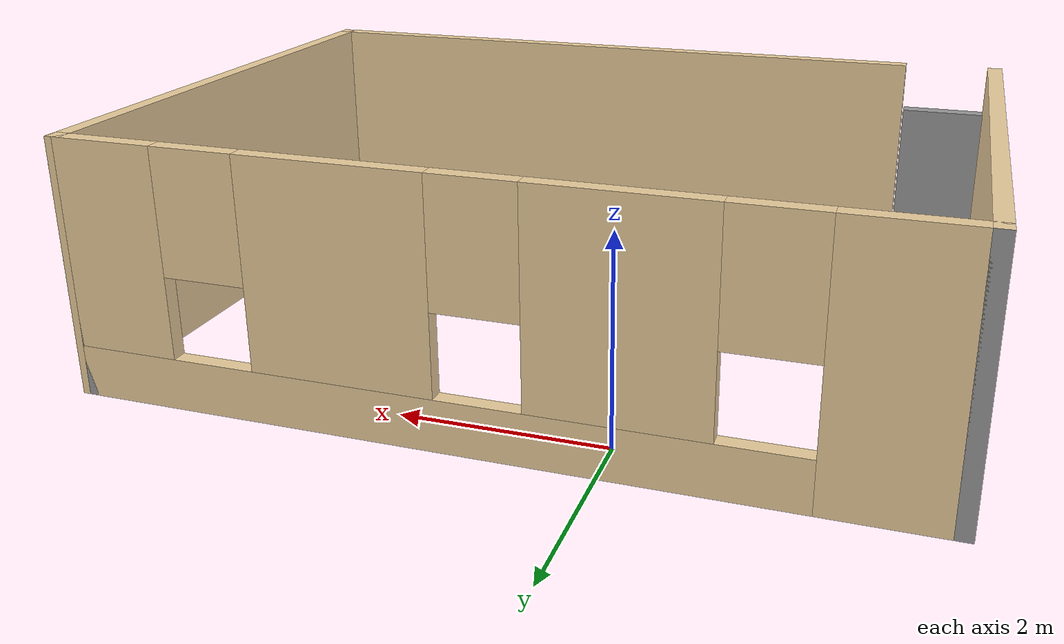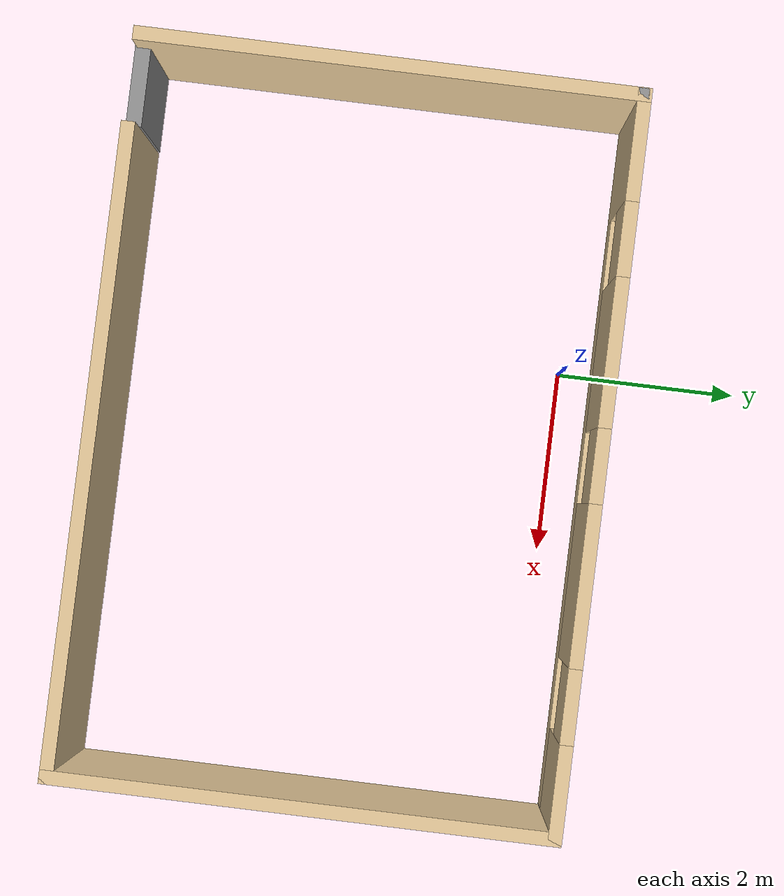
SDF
<?xml version='1.0'?>
<sdf version='1.7'>
  <model name='celec'>
    <pose>1.02952 -2.2413 0 0 -0 0</pose>
    <link name='Door_1'>
      <collision name='Door_1_Collision'>
        <geometry>
          <box>
            <size>0.9 0.17 2</size>
          </box>
        </geometry>
        <pose>0 0 1 0 -0 0</pose>
      </collision>
      <visual name='Door_1_Visual'>
        <pose>0 0 1 0 -0 0</pose>
        <geometry>
          <box>
            <size>0.9 0.17 2</size>
          </box>
        </geometry>
        <material>
          <script>
            <uri>file://media/materials/scripts/gazebo.material</uri>
            <name>Gazebo/Grey</name>
          </script>
        </material>
      </visual>
      <pose>-3.46102 -2.68076 0 0 -0 0</pose>
    </link>
    <link name='Wall_0'>
      <collision name='Wall_0_Collision'>
        <geometry>
          <box>
            <size>7 0.15 2.5</size>
          </box>
        </geometry>
        <pose>0 0 1.25 0 -0 0</pose>
      </collision>
      <visual name='Wall_0_Visual'>
        <pose>0 0 1.25 0 -0 0</pose>
        <geometry>
          <box>
            <size>7 0.15 2.5</size>
          </box>
        </geometry>
        <material>
          <script>
            <uri>file://media/materials/scripts/gazebo.material</uri>
            <name>Gazebo/Grey</name>
          </script>
          <ambient>0.921569 0.807843 0.615686 1</ambient>
        </material>
        <meta>
          <layer>0</layer>
        </meta>
      </visual>
      <pose>0.505482 -2.6787 0 0 -0 0</pose>
    </link>
    <link name='Wall_2'>
      <collision name='Wall_2_Collision'>
        <geometry>
          <box>
            <size>5.5 0.15 2.5</size>
          </box>
        </geometry>
        <pose>0 0 1.25 0 -0 0</pose>
      </collision>
      <visual name='Wall_2_Visual'>
        <pose>0 0 1.25 0 -0 0</pose>
        <geometry>
          <box>
            <size>5.5 0.15 2.5</size>
          </box>
        </geometry>
        <material>
          <script>
            <uri>file://media/materials/scripts/gazebo.material</uri>
            <name>Gazebo/Grey</name>
          </script>
          <ambient>0.921569 0.807843 0.615686 1</ambient>
        </material>
        <meta>
          <layer>0</layer>
        </meta>
      </visual>
      <pose>-3.9305 0.003699 0 0 -0 1.5708</pose>
    </link>
    <link name='Wall_3'>
      <collision name='Wall_3_Collision'>
        <geometry>
          <box>
            <size>0.15 0.15 2.5</size>
          </box>
        </geometry>
        <pose>0 0 1.25 0 -0 0</pose>
      </collision>
      <visual name='Wall_3_Visual'>
        <pose>0 0 1.25 0 -0 0</pose>
        <geometry>
          <box>
            <size>0.15 0.15 2.5</size>
          </box>
        </geometry>
        <material>
          <script>
            <uri>file://media/materials/scripts/gazebo.material</uri>
            <name>Gazebo/Grey</name>
          </script>
          <ambient>1 1 1 1</ambient>
        </material>
        <meta>
          <layer>0</layer>
        </meta>
      </visual>
      <pose>-3.9305 2.6787 0 0 -0 0</pose>
    </link>
    <link name='Wall_4'>
      <pose>-0.005496 2.6787 0 0 -0 0</pose>
      <visual name='Wall_4_Visual_0'>
        <pose>-3.39658 0 1.25 0 -0 0</pose>
        <geometry>
          <box>
            <size>1.20685 0.15 2.5</size>
          </box>
        </geometry>
        <material>
          <script>
            <uri>file://media/materials/scripts/gazebo.material</uri>
            <name>Gazebo/Grey</name>
          </script>
          <ambient>0.921569 0.807843 0.615686 1</ambient>
        </material>
        <meta>
          <layer>0</layer>
        </meta>
      </visual>
      <collision name='Wall_4_Collision_0'>
        <geometry>
          <box>
            <size>1.20685 0.15 2.5</size>
          </box>
        </geometry>
        <pose>-3.39658 0 1.25 0 -0 0</pose>
      </collision>
      <visual name='Wall_4_Visual_1'>
        <pose>0.603423 0 0.25 0 -0 0</pose>
        <geometry>
          <box>
            <size>6.79315 0.15 0.5</size>
          </box>
        </geometry>
        <material>
          <script>
            <uri>file://media/materials/scripts/gazebo.material</uri>
            <name>Gazebo/Grey</name>
          </script>
          <ambient>0.921569 0.807843 0.615686 1</ambient>
        </material>
        <meta>
          <layer>0</layer>
        </meta>
      </visual>
      <collision name='Wall_4_Collision_1'>
        <geometry>
          <box>
            <size>6.79315 0.15 0.5</size>
          </box>
        </geometry>
        <pose>0.603423 0 0.25 0 -0 0</pose>
      </collision>
      <visual name='Wall_4_Visual_2'>
        <pose>-1.19247 0 1.5 0 -0 0</pose>
        <geometry>
          <box>
            <size>1.60136 0.15 2</size>
          </box>
        </geometry>
        <material>
          <script>
            <uri>file://media/materials/scripts/gazebo.material</uri>
            <name>Gazebo/Grey</name>
          </script>
          <ambient>0.921569 0.807843 0.615686 1</ambient>
        </material>
        <meta>
          <layer>0</layer>
        </meta>
      </visual>
      <collision name='Wall_4_Collision_2'>
        <geometry>
          <box>
            <size>1.60136 0.15 2</size>
          </box>
        </geometry>
        <pose>-1.19247 0 1.5 0 -0 0</pose>
      </collision>
      <visual name='Wall_4_Visual_3'>
        <pose>1.2775 0 1.5 0 -0 0</pose>
        <geometry>
          <box>
            <size>1.73858 0.15 2</size>
          </box>
        </geometry>
        <material>
          <script>
            <uri>file://media/materials/scripts/gazebo.material</uri>
            <name>Gazebo/Grey</name>
          </script>
          <ambient>0.921569 0.807843 0.615686 1</ambient>
        </material>
        <meta>
          <layer>0</layer>
        </meta>
      </visual>
      <collision name='Wall_4_Collision_3'>
        <geometry>
          <box>
            <size>1.73858 0.15 2</size>
          </box>
        </geometry>
        <pose>1.2775 0 1.5 0 -0 0</pose>
      </collision>
      <visual name='Wall_4_Visual_4'>
        <pose>3.4734 0 1.5 0 -0 0</pose>
        <geometry>
          <box>
            <size>1.05321 0.15 2</size>
          </box>
        </geometry>
        <material>
          <script>
            <uri>file://media/materials/scripts/gazebo.material</uri>
            <name>Gazebo/Grey</name>
          </script>
          <ambient>0.921569 0.807843 0.615686 1</ambient>
        </material>
        <meta>
          <layer>0</layer>
        </meta>
      </visual>
      <collision name='Wall_4_Collision_4'>
        <geometry>
          <box>
            <size>1.05321 0.15 2</size>
          </box>
        </geometry>
        <pose>3.4734 0 1.5 0 -0 0</pose>
      </collision>
      <visual name='Wall_4_Visual_5'>
        <pose>-2.39315 0 1.9 0 -0 0</pose>
        <geometry>
          <box>
            <size>0.8 0.15 1.2</size>
          </box>
        </geometry>
        <material>
          <script>
            <uri>file://media/materials/scripts/gazebo.material</uri>
            <name>Gazebo/Grey</name>
          </script>
          <ambient>0.921569 0.807843 0.615686 1</ambient>
        </material>
        <meta>
          <layer>0</layer>
        </meta>
      </visual>
      <collision name='Wall_4_Collision_5'>
        <geometry>
          <box>
            <size>0.8 0.15 1.2</size>
          </box>
        </geometry>
        <pose>-2.39315 0 1.9 0 -0 0</pose>
      </collision>
      <visual name='Wall_4_Visual_6'>
        <pose>0.00821 0 1.9 0 -0 0</pose>
        <geometry>
          <box>
            <size>0.8 0.15 1.2</size>
          </box>
        </geometry>
        <material>
          <script>
            <uri>file://media/materials/scripts/gazebo.material</uri>
            <name>Gazebo/Grey</name>
          </script>
          <ambient>0.921569 0.807843 0.615686 1</ambient>
        </material>
        <meta>
          <layer>0</layer>
        </meta>
      </visual>
      <collision name='Wall_4_Collision_6'>
        <geometry>
          <box>
            <size>0.8 0.15 1.2</size>
          </box>
        </geometry>
        <pose>0.00821 0 1.9 0 -0 0</pose>
      </collision>
      <visual name='Wall_4_Visual_7'>
        <pose>2.54679 0 1.9 0 -0 0</pose>
        <geometry>
          <box>
            <size>0.8 0.15 1.2</size>
          </box>
        </geometry>
        <material>
          <script>
            <uri>file://media/materials/scripts/gazebo.material</uri>
            <name>Gazebo/Grey</name>
          </script>
          <ambient>0.921569 0.807843 0.615686 1</ambient>
        </material>
        <meta>
          <layer>0</layer>
        </meta>
      </visual>
      <collision name='Wall_4_Collision_7'>
        <geometry>
          <box>
            <size>0.8 0.15 1.2</size>
          </box>
        </geometry>
        <pose>2.54679 0 1.9 0 -0 0</pose>
      </collision>
    </link>
    <link name='Wall_5'>
      <collision name='Wall_5_Collision'>
        <geometry>
          <box>
            <size>0.16 0.15 2.5</size>
          </box>
        </geometry>
        <pose>0 0 1.25 0 -0 0</pose>
      </collision>
      <visual name='Wall_5_Visual'>
        <pose>0 0 1.25 0 -0 0</pose>
        <geometry>
          <box>
            <size>0.16 0.15 2.5</size>
          </box>
        </geometry>
        <material>
          <script>
            <uri>file://media/materials/scripts/gazebo.material</uri>
            <name>Gazebo/Grey</name>
          </script>
          <ambient>1 1 1 1</ambient>
        </material>
        <meta>
          <layer>0</layer>
        </meta>
      </visual>
      <pose>3.9245 2.6787 0 0 -0 0</pose>
    </link>
    <link name='Wall_6'>
      <collision name='Wall_6_Collision'>
        <geometry>
          <box>
            <size>5.5074 0.15 2.5</size>
          </box>
        </geometry>
        <pose>0 0 1.25 0 -0 0</pose>
      </collision>
      <visual name='Wall_6_Visual'>
        <pose>0 0 1.25 0 -0 0</pose>
        <geometry>
          <box>
            <size>5.5074 0.15 2.5</size>
          </box>
        </geometry>
        <material>
          <script>
            <uri>file://media/materials/scripts/gazebo.material</uri>
            <name>Gazebo/Grey</name>
          </script>
          <ambient>0.921569 0.807843 0.615686 1</ambient>
        </material>
        <meta>
          <layer>0</layer>
        </meta>
      </visual>
      <pose>3.92999 0 0 0 -0 -1.57061</pose>
    </link>
    <static>1</static>
  </model>
</sdf>
